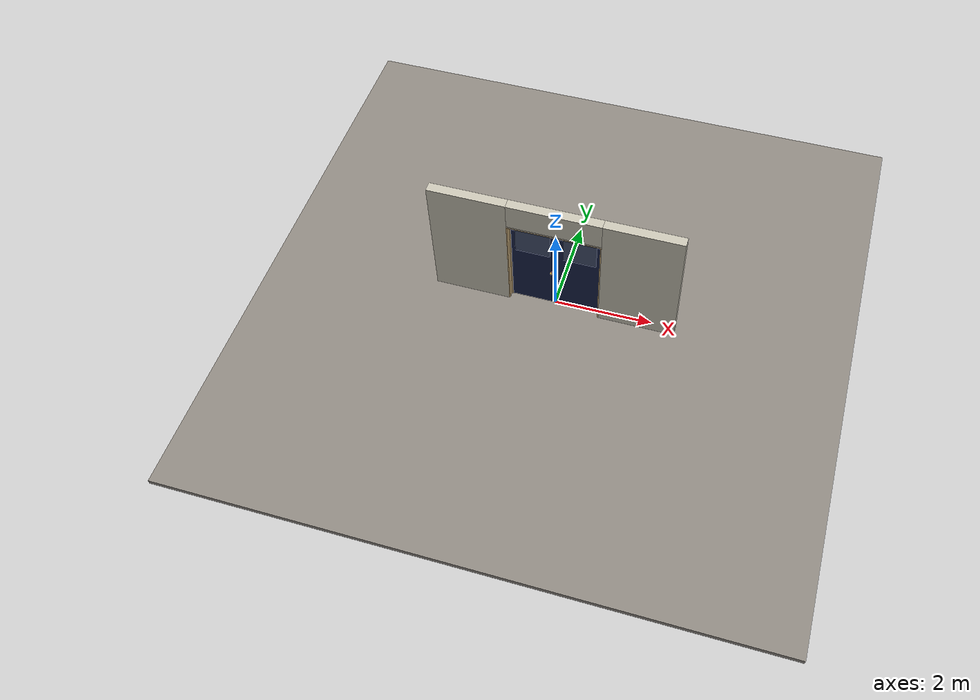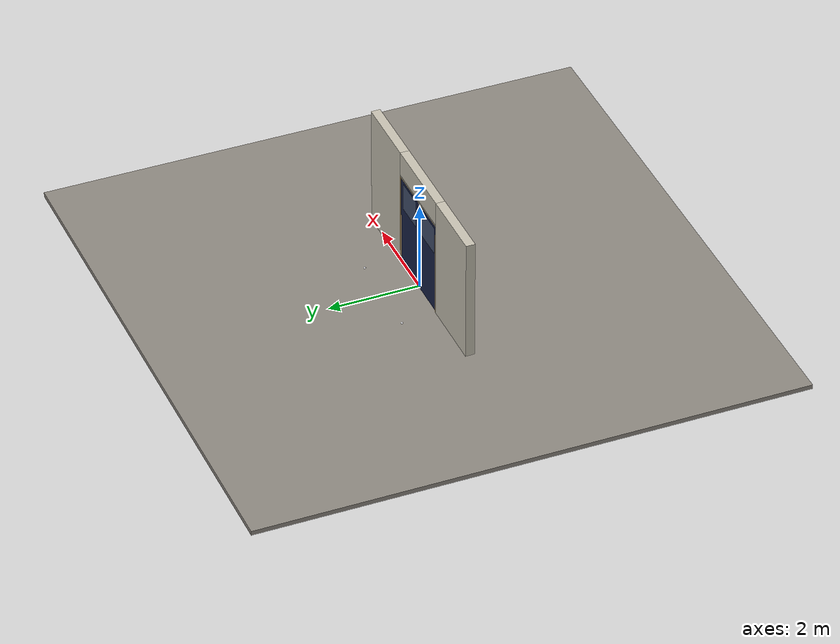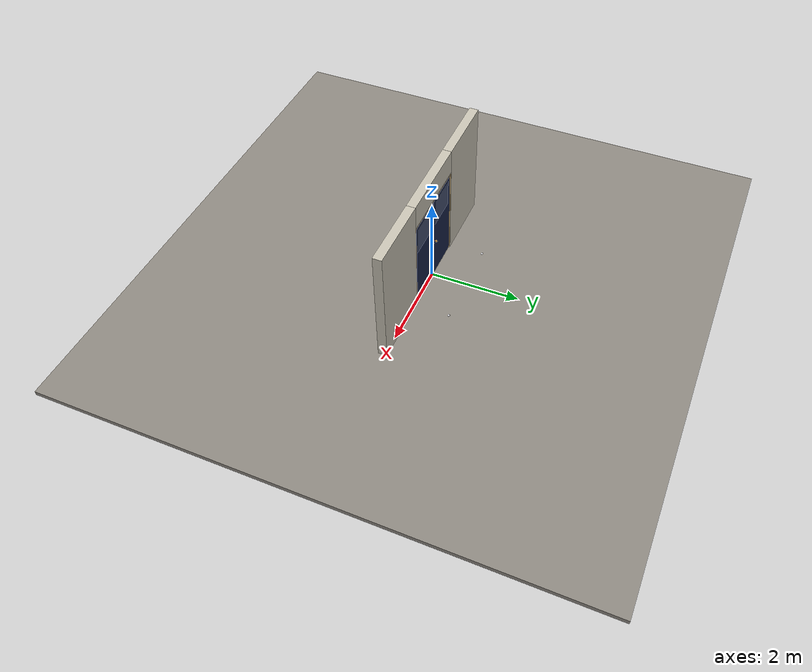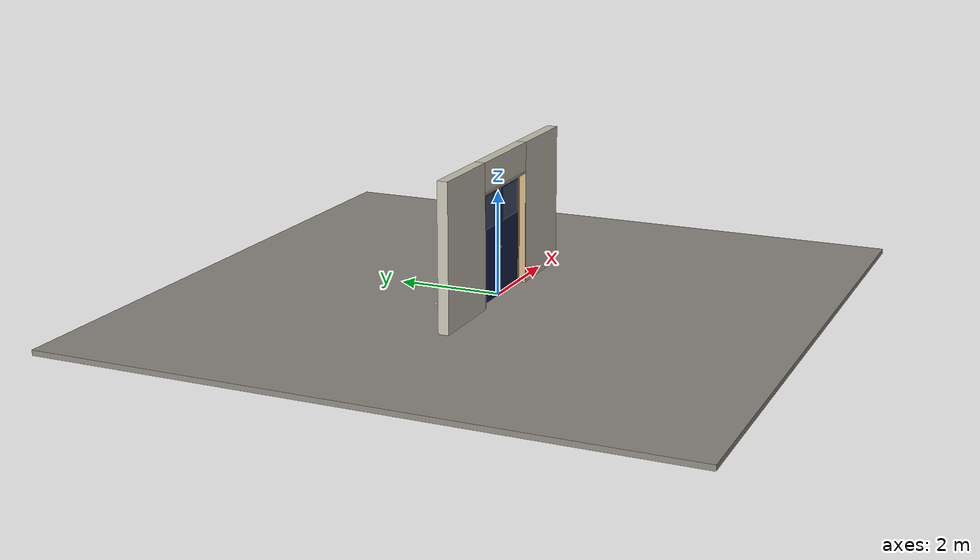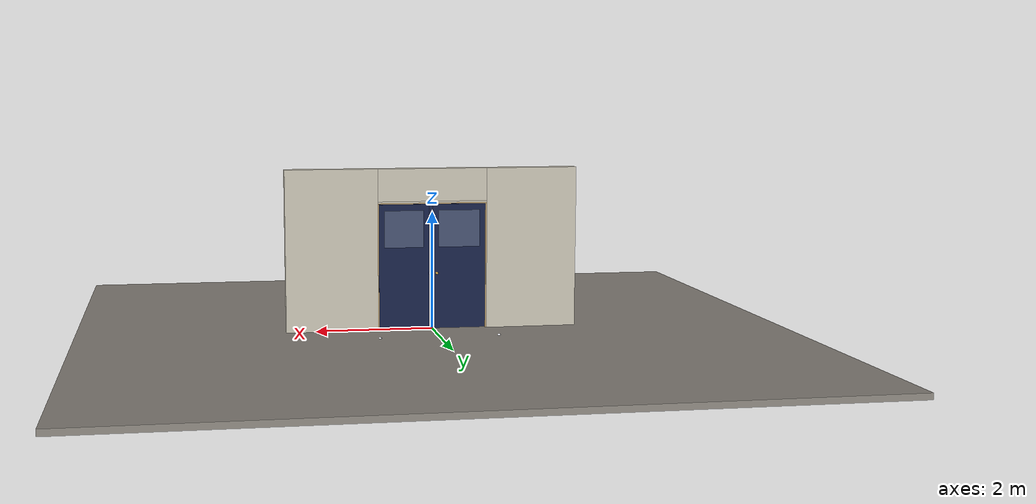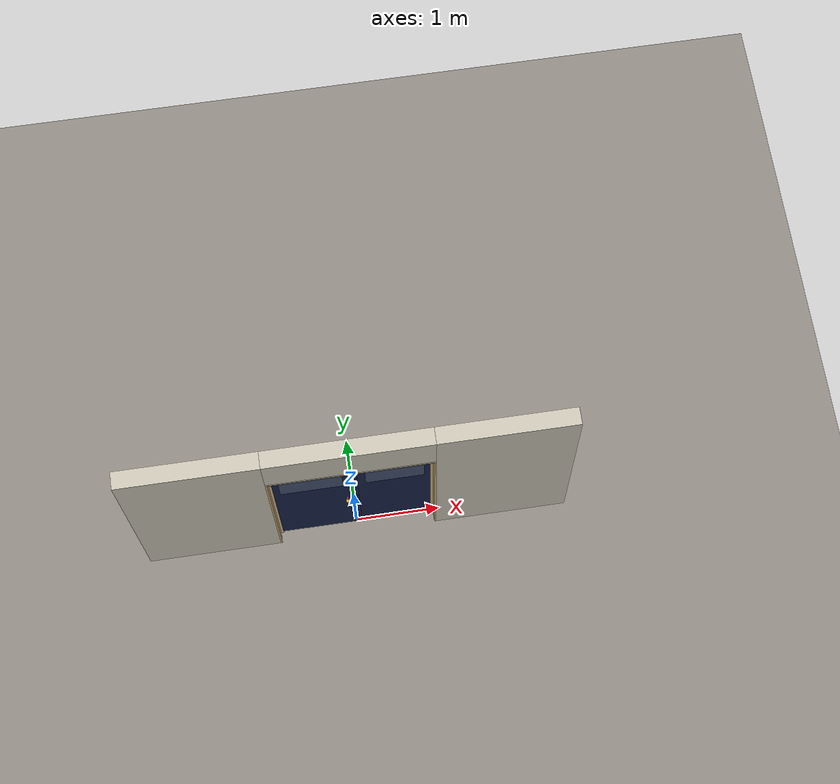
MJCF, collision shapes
<?xml version="1.0" ?>
<mujoco model="db0454_swing_double_full">
  <compiler angle="radian" meshdir="../../hardware" texturedir="../../textures" autolimits="true" inertiafromgeom="false"/>
  <option timestep="0.002" integrator="implicitfast" cone="elliptic" impratio="10" noslip_iterations="3">
    <flag multiccd="enable"/>
  </option>
  <size memory="16M"/>
  <default>
    <geom condim="4" solref="0.005 1" solimp="0.95 0.99 0.001"/>
    <joint solreflimit="0.005 1" solimplimit="0.95 0.99 0.001"/>
    <tendon solreflimit="0.005 1"/>
    <equality solref="0.002 1"/>
  </default>
  <visual>
    <headlight ambient="0.4 0.4 0.4" diffuse="0.7 0.7 0.7" specular="0.2 0.2 0.2"/>
    <quality shadowsize="4096"/>
    <map znear="0.01" zfar="60"/>
  </visual>
  <asset>
    <mesh name="hinge_e22b26c0c1" file="hinge_e22b26c0c1.obj"/>
    <mesh name="hinge_jamb_e1d088f8dc" file="hinge_jamb_e1d088f8dc.obj"/>
    <mesh name="knob_d1888f6f03" file="knob_d1888f6f03.obj"/>
    <material name="mat_floor" rgba="0.55 0.53 0.5 1" specular="0.2" shininess="0.15" reflectance="0"/>
    <material name="mat_wall" rgba="0.78 0.76 0.7 1" specular="0.2" shininess="0.1" reflectance="0"/>
    <material name="mat_leaf_a" rgba="0.09 0.13 0.28 1" specular="0.2" shininess="0.47" reflectance="0"/>
    <material name="mat_glass" rgba="0.85 0.92 0.95 0.25" specular="0.2" shininess="0.95" reflectance="0.1"/>
    <material name="mat_hinge" rgba="0.65 0.66 0.68 1" specular="0.74" shininess="0.5" reflectance="0.36"/>
    <material name="mat_op_brass" rgba="0.85 0.66 0.3 1" specular="0.8" shininess="0.75" reflectance="0.4"/>
    <material name="mat_trim" rgba="0.85 0.66 0.3 1" specular="0.8" shininess="0.75" reflectance="0.4"/>
    <material name="mat_bolt" rgba="0.85 0.66 0.3 1" specular="0.8" shininess="0.75" reflectance="0.4"/>
    <material name="mat_stop" rgba="0.9 0.9 0.92 1" specular="0.8" shininess="0.9" reflectance="0.4"/>
    <material name="mat_leaf_b" rgba="0.09 0.13 0.28 1" specular="0.2" shininess="0.47" reflectance="0"/>
    <material name="mat_frame" rgba="0.82 0.7 0.5 1" specular="0.2" shininess="0.45" reflectance="0"/>
    <texture name="skybox" type="skybox" builtin="gradient" rgb1="0.6 0.7 0.85" rgb2="0.9 0.92 0.95" width="256" height="256"/>
  </asset>
  <worldbody>
    <light name="sun" pos="1.5 -2.5 4" dir="-0.3 0.5 -0.8" directional="true" diffuse="0.8 0.8 0.8" specular="0.3 0.3 0.3" castshadow="true"/>
    <light name="fill" pos="-1.5 2.5 3" dir="0.3 -0.5 -0.7" directional="true" diffuse="0.35 0.35 0.4" castshadow="false"/>
    <camera name="robot_view" pos="0 -2.695812 1.812087" xyaxes="1 0 0 0 0.26963 0.962964" fovy="52"/>
    <camera name="far_view" pos="0 2.579813 1.812087" xyaxes="-1 0 0 0 -0.26963 0.962964" fovy="52"/>
    <camera name="iso" pos="-2.004737 -2.273762 2.234138" xyaxes="0.741536 -0.670913 0 0.242917 0.268487 0.932151" fovy="46"/>
    <camera name="detail_handle" pos="0.1085 -0.8685 1.245" xyaxes="0.97561 0.219512 0 -0.070934 0.315262 0.94635" fovy="38"/>
    <geom name="floor" type="box" size="6 6 0.05" pos="0 0 -0.05" material="mat_floor" group="0" contype="1" conaffinity="1" friction="0.8 0.005 0.0001" density="2400"/>
    <geom name="wall_left" type="box" size="0.78125 0.1 1.3735" pos="-1.71875 -0.058 1.3735" material="mat_wall" group="0" contype="1" conaffinity="1" friction="0.6 0.005 0.0001" density="800"/>
    <geom name="wall_right" type="box" size="0.78125 0.1 1.3735" pos="1.71875 -0.058 1.3735" material="mat_wall" group="0" contype="1" conaffinity="1" friction="0.6 0.005 0.0001" density="800"/>
    <geom name="wall_header" type="box" size="0.9375 0.1 0.2755" pos="0 -0.058 2.4715" material="mat_wall" group="0" contype="1" conaffinity="1" friction="0.6 0.005 0.0001" density="800"/>
    <geom name="hinge_0_jamb" type="mesh" mesh="hinge_jamb_e1d088f8dc" pos="-0.9155 0.029 0.259" quat="0 1 0 0" material="mat_hinge" group="1" contype="0" conaffinity="0" density="7850"/>
    <geom name="hinge_1_jamb" type="mesh" mesh="hinge_jamb_e1d088f8dc" pos="-0.9155 0.029 1.076" quat="0 1 0 0" material="mat_hinge" group="1" contype="0" conaffinity="0" density="7850"/>
    <geom name="hinge_2_jamb" type="mesh" mesh="hinge_jamb_e1d088f8dc" pos="-0.9155 0.029 1.963" quat="0 1 0 0" material="mat_hinge" group="1" contype="0" conaffinity="0" density="7850"/>
    <geom name="floor_stop_dome" type="sphere" size="0.025" pos="-1.003135 0.801201 0" material="mat_stop" group="0" contype="1" conaffinity="1" friction="0.6 0.005 0.0001" density="7000"/>
    <geom name="hinge_0_jamb_2" type="mesh" mesh="hinge_jamb_e1d088f8dc" pos="0.9155 0.029 0.259" quat="0 0 0 1" material="mat_hinge" group="1" contype="0" conaffinity="0" density="7850"/>
    <geom name="hinge_1_jamb_2" type="mesh" mesh="hinge_jamb_e1d088f8dc" pos="0.9155 0.029 1.076" quat="0 0 0 1" material="mat_hinge" group="1" contype="0" conaffinity="0" density="7850"/>
    <geom name="hinge_2_jamb_2" type="mesh" mesh="hinge_jamb_e1d088f8dc" pos="0.9155 0.029 1.963" quat="0 0 0 1" material="mat_hinge" group="1" contype="0" conaffinity="0" density="7850"/>
    <geom name="floor_stop_dome_2" type="sphere" size="0.025" pos="1.003135 0.801201 0" material="mat_stop" group="0" contype="1" conaffinity="1" friction="0.6 0.005 0.0001" density="7000"/>
    <geom name="jamb_l" type="box" size="0.0095 0.1 1.0735" pos="-0.928 -0.058 1.0735" material="mat_frame" group="0" contype="1" conaffinity="1" friction="0.6 0.005 0.0001" density="300"/>
    <geom name="jamb_r" type="box" size="0.0095 0.1 1.0735" pos="0.928 -0.058 1.0735" material="mat_frame" group="0" contype="1" conaffinity="1" friction="0.6 0.005 0.0001" density="300"/>
    <geom name="jamb_head" type="box" size="0.9375 0.1 0.0095" pos="0 -0.058 2.1565" material="mat_frame" group="0" contype="1" conaffinity="1" friction="0.6 0.005 0.0001" density="300"/>
    <geom name="head_stud" type="box" size="0.9375 0.1 0.015" pos="0 -0.058 2.181" material="mat_wall" group="0" contype="1" conaffinity="1" friction="0.6 0.005 0.0001" density="500"/>
    <geom name="stop_l" type="box" size="0.015 0.006 1.0735" pos="-0.9035 -0.0285 1.0735" material="mat_frame" group="0" contype="1" conaffinity="1" friction="0.6 0.005 0.0001" density="300"/>
    <geom name="stop_r" type="box" size="0.015 0.006 1.0735" pos="0.9035 -0.0285 1.0735" material="mat_frame" group="0" contype="1" conaffinity="1" friction="0.6 0.005 0.0001" density="300"/>
    <geom name="stop_head" type="box" size="0.9185 0.006 0.015" pos="0 -0.0285 2.132" material="mat_frame" group="0" contype="1" conaffinity="1" friction="0.6 0.005 0.0001" density="300"/>
    <site name="approach_point" pos="0 -1.5 0" quat="1 0 0 0" size="0.05" rgba="0.2 0.9 0.2 0.5" group="4"/>
    <site name="goal_point" pos="0 1.5 0" quat="1 0 0 0" size="0.05" rgba="0.2 0.9 0.2 0.5" group="4"/>
    <site name="door_plane_center" pos="0 0 1.0735" quat="1 0 0 0" size="0.02" rgba="0.2 0.9 0.2 0.5" group="4"/>
    <site name="approach_point_2" pos="0 -1.5 0" quat="1 0 0 0" size="0.05" rgba="0.2 0.9 0.2 0.5" group="4"/>
    <site name="goal_point_2" pos="0 1.5 0" quat="1 0 0 0" size="0.05" rgba="0.2 0.9 0.2 0.5" group="4"/>
    <site name="door_plane_center_2" pos="0 0 1.0735" quat="1 0 0 0" size="0.02" rgba="0.2 0.9 0.2 0.5" group="4"/>
    <site name="approach_point_3" pos="0 -1.5 0" quat="1 0 0 0" size="0.05" rgba="0.2 0.9 0.2 0.5" group="4"/>
    <site name="goal_point_3" pos="0 1.5 0" quat="1 0 0 0" size="0.05" rgba="0.2 0.9 0.2 0.5" group="4"/>
    <site name="door_plane_center_3" pos="0 0 1.0735" quat="1 0 0 0" size="0.02" rgba="0.2 0.9 0.2 0.5" group="4"/>
    <body name="leaf_a" pos="-0.9185 0 0">
      <inertial pos="0.445034 0.000597 1.077317" mass="27.955227" quat="0.500603 0.4988 -0.501181 0.499412" diaginertia="2.076660199 10.708223183 12.775196719"/>
      <joint name="leaf_a_hinge" type="hinge" axis="0 0 1" pos="0.003 0.029 0" limited="true" range="0 1.658063" solreflimit="0.02 1" damping="0.318966" frictionloss="0.876659" armature="0.02"/>
      <geom name="leaf_a_slab" type="box" size="0.457 0.022 1.067" pos="0.46 0 1.076" material="mat_leaf_a" group="0" contype="1" conaffinity="1" friction="0.4 0.005 0.0001" density="1"/>
      <geom name="leaf_a_glass_0" type="box" size="0.35646 0.0228 0.313698" pos="0.46 0 1.722602" material="mat_glass" group="1" contype="0" conaffinity="0" density="1"/>
      <geom name="hinge_0" type="mesh" mesh="hinge_e22b26c0c1" pos="0.003 0.029 0.259" quat="0 1 0 0" material="mat_hinge" group="1" contype="0" conaffinity="0" density="7850"/>
      <geom name="hinge_1" type="mesh" mesh="hinge_e22b26c0c1" pos="0.003 0.029 1.076" quat="0 1 0 0" material="mat_hinge" group="1" contype="0" conaffinity="0" density="7850"/>
      <geom name="hinge_2" type="mesh" mesh="hinge_e22b26c0c1" pos="0.003 0.029 1.963" quat="0 1 0 0" material="mat_hinge" group="1" contype="0" conaffinity="0" density="7850"/>
      <geom name="leaf_a_latch_bolt_faceplate" type="box" size="0.0006 0.01235 0.0267" pos="0.9164 0 0.965" material="mat_bolt" group="1" contype="0" conaffinity="0" density="8500"/>
      <site name="leaf_a_edge_mid" pos="0.917 0 1.067" quat="1 0 0 0" size="0.02" rgba="0.2 0.9 0.2 0.5" group="4"/>
      <body name="leaf_a_handle" pos="0.847 0 0.965">
        <inertial pos="0 0 0" mass="1.151952" quat="0.5 -0.5 0.5 -0.5" diaginertia="0.000312514 0.004264603 0.004264603"/>
        <joint name="leaf_a_handle_hinge" type="hinge" axis="0 -1 0" limited="true" range="0 0.87" damping="0.143614" frictionloss="0.038" stiffness="0.5" springref="-0.5" armature="0.01"/>
        <geom name="leaf_a_handle_spindle" type="cylinder" size="0.006 0.03" pos="0 0 0" quat="0.707107 -0.707107 0 0" material="mat_op_brass" group="1" contype="0" conaffinity="0" density="7850"/>
        <geom name="leaf_a_handle_knob_n" type="mesh" mesh="knob_d1888f6f03" pos="0 -0.022 0" quat="0.707107 0.707107 0 0" material="mat_op_brass" group="1" contype="0" conaffinity="0" density="3000"/>
        <geom name="leaf_a_handle_knob_col_n" type="sphere" size="0.0243" pos="0 -0.0685 0" material="mat_op_brass" group="0" contype="1" conaffinity="1" friction="0.9 0.01 0.0001" density="3000"/>
        <geom name="leaf_a_handle_knob_neck_n" type="cylinder" size="0.011 0.012" pos="0 -0.034 0" quat="0.707107 -0.707107 0 0" material="mat_op_brass" group="3" contype="1" conaffinity="1" rgba="0.8 0.3 0.3 0.25" friction="0.6 0.005 0.0001" density="3000"/>
        <geom name="leaf_a_handle_knob_p" type="mesh" mesh="knob_d1888f6f03" pos="0 0.022 0" quat="-0.707107 0.707107 0 0" material="mat_op_brass" group="1" contype="0" conaffinity="0" density="3000"/>
        <geom name="leaf_a_handle_knob_col_p" type="sphere" size="0.0243" pos="0 0.0685 0" material="mat_op_brass" group="0" contype="1" conaffinity="1" friction="0.9 0.01 0.0001" density="3000"/>
        <geom name="leaf_a_handle_knob_neck_p" type="cylinder" size="0.011 0.012" pos="0 0.034 0" quat="0.707107 -0.707107 0 0" material="mat_op_brass" group="3" contype="1" conaffinity="1" rgba="0.8 0.3 0.3 0.25" friction="0.6 0.005 0.0001" density="3000"/>
        <site name="leaf_a_handle_grip_n" pos="0 -0.0685 0" quat="1 0 0 0" size="0.012" rgba="0.2 0.9 0.2 0.5" group="4"/>
        <site name="leaf_a_handle_grip_p" pos="0 0.0685 0" quat="1 0 0 0" size="0.012" rgba="0.2 0.9 0.2 0.5" group="4"/>
      </body>
      <body name="leaf_a_latch_bolt" pos="0.917 0 0.965">
        <inertial pos="-0.00865 0 0" mass="0.041419" quat="0.92388 -0.382683 0 0" diaginertia="0.000000798 0.000005598 0.000005598"/>
        <joint name="leaf_a_latch_bolt_slide" type="slide" axis="-1 0 0" limited="true" range="0 0.0127" damping="2" frictionloss="0.3" stiffness="300" springref="-0.008333" armature="0.1"/>
        <geom name="leaf_a_latch_bolt_capsule" type="capsule" size="0.00635 0.015" pos="-0.00865 0 0" quat="0.707107 0 0.707107 0" material="mat_bolt" group="0" contype="1" conaffinity="1" friction="0.2 0.005 0.0001" density="8500"/>
      </body>
    </body>
    <body name="leaf_b" pos="0.9185 0 0">
      <inertial pos="-0.415865 0.000598 1.077346" mass="27.618785" quat="0.499297 0.501193 -0.498788 0.500717" diaginertia="1.790761897 10.585525761 12.366713461"/>
      <joint name="leaf_b_hinge" type="hinge" axis="0 0 -1" pos="-0.003 0.029 0" limited="true" range="0 0.001" solreflimit="0.02 1" damping="0.318966" frictionloss="0.876659" armature="0.02"/>
      <geom name="leaf_b_edge_965_wall_n" type="box" size="0.03 0.007075 0.0167" pos="-0.887 -0.014925 0.965" material="mat_leaf_b" group="0" contype="1" conaffinity="1" friction="0.6 0.005 0.0001" density="1"/>
      <geom name="leaf_b_edge_965_wall_p" type="box" size="0.03 0.008 0.0167" pos="-0.887 0.01585 0.965" material="mat_leaf_b" group="0" contype="1" conaffinity="1" friction="0.6 0.005 0.0001" density="1"/>
      <geom name="leaf_b_edge_965_ramp" type="box" size="0.03 0.01649 0.0167" pos="-0.882861 0.026388 0.965" quat="0.977148 0 0 -0.212558" material="mat_leaf_b" group="0" contype="1" conaffinity="1" friction="0.12 0.005 0.0001" density="1"/>
      <geom name="leaf_b_edge_965_back" type="box" size="0.02165 0.00785 0.0167" pos="-0.87865 0 0.965" material="mat_leaf_b" group="0" contype="1" conaffinity="1" friction="0.6 0.005 0.0001" density="1"/>
      <geom name="leaf_b_edge_seg_0" type="box" size="0.03 0.022 0.46965" pos="-0.887 0 0.47865" material="mat_leaf_b" group="0" contype="1" conaffinity="1" friction="0.6 0.005 0.0001" density="1"/>
      <geom name="leaf_b_edge_seg_1" type="box" size="0.03 0.022 0.58065" pos="-0.887 0 1.56235" material="mat_leaf_b" group="0" contype="1" conaffinity="1" friction="0.6 0.005 0.0001" density="1"/>
      <geom name="leaf_b_slab" type="box" size="0.427 0.022 1.067" pos="-0.43 0 1.076" material="mat_leaf_b" group="0" contype="1" conaffinity="1" friction="0.4 0.005 0.0001" density="1"/>
      <geom name="leaf_b_glass_0" type="box" size="0.33306 0.0228 0.313698" pos="-0.43 0 1.722602" material="mat_glass" group="1" contype="0" conaffinity="0" density="1"/>
      <geom name="hinge_0_2" type="mesh" mesh="hinge_e22b26c0c1" pos="-0.003 0.029 0.259" quat="0 0 0 1" material="mat_hinge" group="1" contype="0" conaffinity="0" density="7850"/>
      <geom name="hinge_1_2" type="mesh" mesh="hinge_e22b26c0c1" pos="-0.003 0.029 1.076" quat="0 0 0 1" material="mat_hinge" group="1" contype="0" conaffinity="0" density="7850"/>
      <geom name="hinge_2_2" type="mesh" mesh="hinge_e22b26c0c1" pos="-0.003 0.029 1.963" quat="0 0 0 1" material="mat_hinge" group="1" contype="0" conaffinity="0" density="7850"/>
      <site name="leaf_b_edge_mid" pos="-0.917 0 1.067" quat="1 0 0 0" size="0.02" rgba="0.2 0.9 0.2 0.5" group="4"/>
    </body>
  </worldbody>
  <tendon>
    <fixed name="leaf_a_latch_bolt_coupling" limited="true" range="0 10">
      <joint joint="leaf_a_latch_bolt_slide" coef="1"/>
      <joint joint="leaf_a_handle_hinge" coef="-0.015679"/>
    </fixed>
  </tendon>
  <sensor>
    <jointpos name="leaf_a_hinge_pos" joint="leaf_a_hinge"/>
    <jointvel name="leaf_a_hinge_vel" joint="leaf_a_hinge"/>
    <jointpos name="leaf_a_handle_hinge_pos" joint="leaf_a_handle_hinge"/>
    <jointvel name="leaf_a_handle_hinge_vel" joint="leaf_a_handle_hinge"/>
    <jointpos name="leaf_a_latch_bolt_slide_pos" joint="leaf_a_latch_bolt_slide"/>
    <jointvel name="leaf_a_latch_bolt_slide_vel" joint="leaf_a_latch_bolt_slide"/>
    <jointpos name="leaf_b_hinge_pos" joint="leaf_b_hinge"/>
    <jointvel name="leaf_b_hinge_vel" joint="leaf_b_hinge"/>
  </sensor>
</mujoco>
